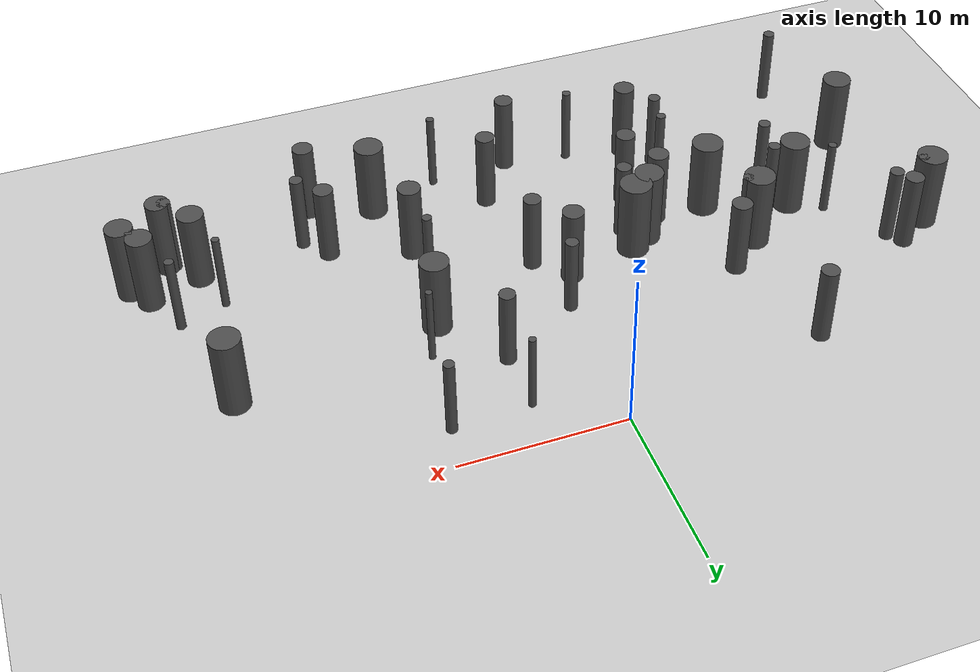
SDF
<sdf version="1.9">
 <world name="default">
  <model name="ground_plane">
   <static>true</static>
   <link name="link">
    <collision name="collision">
     <geometry><plane><normal>0 0 1</normal><size>1 1</size></plane></geometry>
    </collision>
    <visual name="visual">
     <geometry><plane><normal>0 0 1</normal><size>500 500</size></plane></geometry>
     <material>
      <ambient>0.8 0.8 0.8 1</ambient>
      <diffuse>0.8 0.8 0.8 1</diffuse>
      <specular>0.8 0.8 0.8 1</specular>
     </material>
    </visual>
    <inertial>
     <mass>1</mass>
     <inertia><ixx>1</ixx><ixy>0</ixy><ixz>0</ixz><iyy>1</iyy><iyz>0</iyz><izz>1</izz></inertia>
    </inertial>
   </link>
  </model>
  <model name="cylinder_0">
   <static>true</static>
   <pose>19.62 -19.38 2.50 0 0 0</pose>
   <link name="link">
    <collision name="collision">
     <geometry><cylinder><radius>0.80</radius><length>5.0</length></cylinder></geometry>
    </collision>
    <visual name="visual">
     <geometry><cylinder><radius>0.80</radius><length>5.0</length></cylinder></geometry>
     <material>
      <ambient>0.3 0.3 0.3 1</ambient>
      <diffuse>0.3 0.3 0.3 1</diffuse>
      <specular>0.1 0.1 0.1 1</specular>
     </material>
    </visual>
   </link>
  </model>
  <model name="cylinder_1">
   <static>true</static>
   <pose>-12.82 -11.24 2.50 0 0 0</pose>
   <link name="link">
    <collision name="collision">
     <geometry><cylinder><radius>0.94</radius><length>5.0</length></cylinder></geometry>
    </collision>
    <visual name="visual">
     <geometry><cylinder><radius>0.94</radius><length>5.0</length></cylinder></geometry>
     <material>
      <ambient>0.3 0.3 0.3 1</ambient>
      <diffuse>0.3 0.3 0.3 1</diffuse>
      <specular>0.1 0.1 0.1 1</specular>
     </material>
    </visual>
   </link>
  </model>
  <model name="cylinder_2">
   <static>true</static>
   <pose>4.63 -2.87 2.50 0 0 0</pose>
   <link name="link">
    <collision name="collision">
     <geometry><cylinder><radius>0.22</radius><length>5.0</length></cylinder></geometry>
    </collision>
    <visual name="visual">
     <geometry><cylinder><radius>0.22</radius><length>5.0</length></cylinder></geometry>
     <material>
      <ambient>0.3 0.3 0.3 1</ambient>
      <diffuse>0.3 0.3 0.3 1</diffuse>
      <specular>0.1 0.1 0.1 1</specular>
     </material>
    </visual>
   </link>
  </model>
  <model name="cylinder_5">
   <static>true</static>
   <pose>-23.44 -9.43 2.50 0 0 0</pose>
   <link name="link">
    <collision name="collision">
     <geometry><cylinder><radius>0.93</radius><length>5.0</length></cylinder></geometry>
    </collision>
    <visual name="visual">
     <geometry><cylinder><radius>0.93</radius><length>5.0</length></cylinder></geometry>
     <material>
      <ambient>0.3 0.3 0.3 1</ambient>
      <diffuse>0.3 0.3 0.3 1</diffuse>
      <specular>0.1 0.1 0.1 1</specular>
     </material>
    </visual>
   </link>
  </model>
  <model name="cylinder_6">
   <static>true</static>
   <pose>-1.21 -11.95 2.50 0 0 0</pose>
   <link name="link">
    <collision name="collision">
     <geometry><cylinder><radius>0.66</radius><length>5.0</length></cylinder></geometry>
    </collision>
    <visual name="visual">
     <geometry><cylinder><radius>0.66</radius><length>5.0</length></cylinder></geometry>
     <material>
      <ambient>0.3 0.3 0.3 1</ambient>
      <diffuse>0.3 0.3 0.3 1</diffuse>
      <specular>0.1 0.1 0.1 1</specular>
     </material>
    </visual>
   </link>
  </model>
  <model name="cylinder_12">
   <static>true</static>
   <pose>-21.37 -7.94 2.50 0 0 0</pose>
   <link name="link">
    <collision name="collision">
     <geometry><cylinder><radius>0.57</radius><length>5.0</length></cylinder></geometry>
    </collision>
    <visual name="visual">
     <geometry><cylinder><radius>0.57</radius><length>5.0</length></cylinder></geometry>
     <material>
      <ambient>0.3 0.3 0.3 1</ambient>
      <diffuse>0.3 0.3 0.3 1</diffuse>
      <specular>0.1 0.1 0.1 1</specular>
     </material>
    </visual>
   </link>
  </model>
  <model name="cylinder_13">
   <static>true</static>
   <pose>-22.87 -9.44 2.50 0 0 0</pose>
   <link name="link">
    <collision name="collision">
     <geometry><cylinder><radius>0.32</radius><length>5.0</length></cylinder></geometry>
    </collision>
    <visual name="visual">
     <geometry><cylinder><radius>0.32</radius><length>5.0</length></cylinder></geometry>
     <material>
      <ambient>0.3 0.3 0.3 1</ambient>
      <diffuse>0.3 0.3 0.3 1</diffuse>
      <specular>0.1 0.1 0.1 1</specular>
     </material>
    </visual>
   </link>
  </model>
  <model name="cylinder_18">
   <static>true</static>
   <pose>11.87 -18.88 2.50 0 0 0</pose>
   <link name="link">
    <collision name="collision">
     <geometry><cylinder><radius>0.60</radius><length>5.0</length></cylinder></geometry>
    </collision>
    <visual name="visual">
     <geometry><cylinder><radius>0.60</radius><length>5.0</length></cylinder></geometry>
     <material>
      <ambient>0.3 0.3 0.3 1</ambient>
      <diffuse>0.3 0.3 0.3 1</diffuse>
      <specular>0.1 0.1 0.1 1</specular>
     </material>
    </visual>
   </link>
  </model>
  <model name="cylinder_24">
   <static>true</static>
   <pose>-8.00 -15.27 2.50 0 0 0</pose>
   <link name="link">
    <collision name="collision">
     <geometry><cylinder><radius>0.64</radius><length>5.0</length></cylinder></geometry>
    </collision>
    <visual name="visual">
     <geometry><cylinder><radius>0.64</radius><length>5.0</length></cylinder></geometry>
     <material>
      <ambient>0.3 0.3 0.3 1</ambient>
      <diffuse>0.3 0.3 0.3 1</diffuse>
      <specular>0.1 0.1 0.1 1</specular>
     </material>
    </visual>
   </link>
  </model>
  <model name="cylinder_25">
   <static>true</static>
   <pose>-6.87 -17.71 2.50 0 0 0</pose>
   <link name="link">
    <collision name="collision">
     <geometry><cylinder><radius>0.59</radius><length>5.0</length></cylinder></geometry>
    </collision>
    <visual name="visual">
     <geometry><cylinder><radius>0.59</radius><length>5.0</length></cylinder></geometry>
     <material>
      <ambient>0.3 0.3 0.3 1</ambient>
      <diffuse>0.3 0.3 0.3 1</diffuse>
      <specular>0.1 0.1 0.1 1</specular>
     </material>
    </visual>
   </link>
  </model>
  <model name="cylinder_27">
   <static>true</static>
   <pose>12.03 -23.19 2.50 0 0 0</pose>
   <link name="link">
    <collision name="collision">
     <geometry><cylinder><radius>0.63</radius><length>5.0</length></cylinder></geometry>
    </collision>
    <visual name="visual">
     <geometry><cylinder><radius>0.63</radius><length>5.0</length></cylinder></geometry>
     <material>
      <ambient>0.3 0.3 0.3 1</ambient>
      <diffuse>0.3 0.3 0.3 1</diffuse>
      <specular>0.1 0.1 0.1 1</specular>
     </material>
    </visual>
   </link>
  </model>
  <model name="cylinder_28">
   <static>true</static>
   <pose>-18.26 -12.42 2.50 0 0 0</pose>
   <link name="link">
    <collision name="collision">
     <geometry><cylinder><radius>0.26</radius><length>5.0</length></cylinder></geometry>
    </collision>
    <visual name="visual">
     <geometry><cylinder><radius>0.26</radius><length>5.0</length></cylinder></geometry>
     <material>
      <ambient>0.3 0.3 0.3 1</ambient>
      <diffuse>0.3 0.3 0.3 1</diffuse>
      <specular>0.1 0.1 0.1 1</specular>
     </material>
    </visual>
   </link>
  </model>
  <model name="cylinder_30">
   <static>true</static>
   <pose>-5.02 -23.02 2.50 0 0 0</pose>
   <link name="link">
    <collision name="collision">
     <geometry><cylinder><radius>0.27</radius><length>5.0</length></cylinder></geometry>
    </collision>
    <visual name="visual">
     <geometry><cylinder><radius>0.27</radius><length>5.0</length></cylinder></geometry>
     <material>
      <ambient>0.3 0.3 0.3 1</ambient>
      <diffuse>0.3 0.3 0.3 1</diffuse>
      <specular>0.1 0.1 0.1 1</specular>
     </material>
    </visual>
   </link>
  </model>
  <model name="cylinder_32">
   <static>true</static>
   <pose>-11.24 -15.23 2.50 0 0 0</pose>
   <link name="link">
    <collision name="collision">
     <geometry><cylinder><radius>0.95</radius><length>5.0</length></cylinder></geometry>
    </collision>
    <visual name="visual">
     <geometry><cylinder><radius>0.95</radius><length>5.0</length></cylinder></geometry>
     <material>
      <ambient>0.3 0.3 0.3 1</ambient>
      <diffuse>0.3 0.3 0.3 1</diffuse>
      <specular>0.1 0.1 0.1 1</specular>
     </material>
    </visual>
   </link>
  </model>
  <model name="cylinder_34">
   <static>true</static>
   <pose>21.51 -15.66 2.50 0 0 0</pose>
   <link name="link">
    <collision name="collision">
     <geometry><cylinder><radius>0.28</radius><length>5.0</length></cylinder></geometry>
    </collision>
    <visual name="visual">
     <geometry><cylinder><radius>0.28</radius><length>5.0</length></cylinder></geometry>
     <material>
      <ambient>0.3 0.3 0.3 1</ambient>
      <diffuse>0.3 0.3 0.3 1</diffuse>
      <specular>0.1 0.1 0.1 1</specular>
     </material>
    </visual>
   </link>
  </model>
  <model name="cylinder_35">
   <static>true</static>
   <pose>-0.17 -9.47 2.50 0 0 0</pose>
   <link name="link">
    <collision name="collision">
     <geometry><cylinder><radius>0.39</radius><length>5.0</length></cylinder></geometry>
    </collision>
    <visual name="visual">
     <geometry><cylinder><radius>0.39</radius><length>5.0</length></cylinder></geometry>
     <material>
      <ambient>0.3 0.3 0.3 1</ambient>
      <diffuse>0.3 0.3 0.3 1</diffuse>
      <specular>0.1 0.1 0.1 1</specular>
     </material>
    </visual>
   </link>
  </model>
  <model name="cylinder_36">
   <static>true</static>
   <pose>-15.35 -15.80 2.50 0 0 0</pose>
   <link name="link">
    <collision name="collision">
     <geometry><cylinder><radius>0.37</radius><length>5.0</length></cylinder></geometry>
    </collision>
    <visual name="visual">
     <geometry><cylinder><radius>0.37</radius><length>5.0</length></cylinder></geometry>
     <material>
      <ambient>0.3 0.3 0.3 1</ambient>
      <diffuse>0.3 0.3 0.3 1</diffuse>
      <specular>0.1 0.1 0.1 1</specular>
     </material>
    </visual>
   </link>
  </model>
  <model name="cylinder_38">
   <static>true</static>
   <pose>4.71 -6.65 2.50 0 0 0</pose>
   <link name="link">
    <collision name="collision">
     <geometry><cylinder><radius>0.48</radius><length>5.0</length></cylinder></geometry>
    </collision>
    <visual name="visual">
     <geometry><cylinder><radius>0.48</radius><length>5.0</length></cylinder></geometry>
     <material>
      <ambient>0.3 0.3 0.3 1</ambient>
      <diffuse>0.3 0.3 0.3 1</diffuse>
      <specular>0.1 0.1 0.1 1</specular>
     </material>
    </visual>
   </link>
  </model>
  <model name="cylinder_43">
   <static>true</static>
   <pose>0.63 -13.84 2.50 0 0 0</pose>
   <link name="link">
    <collision name="collision">
     <geometry><cylinder><radius>0.54</radius><length>5.0</length></cylinder></geometry>
    </collision>
    <visual name="visual">
     <geometry><cylinder><radius>0.54</radius><length>5.0</length></cylinder></geometry>
     <material>
      <ambient>0.3 0.3 0.3 1</ambient>
      <diffuse>0.3 0.3 0.3 1</diffuse>
      <specular>0.1 0.1 0.1 1</specular>
     </material>
    </visual>
   </link>
  </model>
  <model name="cylinder_44">
   <static>true</static>
   <pose>6.89 -14.36 2.50 0 0 0</pose>
   <link name="link">
    <collision name="collision">
     <geometry><cylinder><radius>0.29</radius><length>5.0</length></cylinder></geometry>
    </collision>
    <visual name="visual">
     <geometry><cylinder><radius>0.29</radius><length>5.0</length></cylinder></geometry>
     <material>
      <ambient>0.3 0.3 0.3 1</ambient>
      <diffuse>0.3 0.3 0.3 1</diffuse>
      <specular>0.1 0.1 0.1 1</specular>
     </material>
    </visual>
   </link>
  </model>
  <model name="cylinder_45">
   <static>true</static>
   <pose>-1.02 -23.64 2.50 0 0 0</pose>
   <link name="link">
    <collision name="collision">
     <geometry><cylinder><radius>0.57</radius><length>5.0</length></cylinder></geometry>
    </collision>
    <visual name="visual">
     <geometry><cylinder><radius>0.57</radius><length>5.0</length></cylinder></geometry>
     <material>
      <ambient>0.3 0.3 0.3 1</ambient>
      <diffuse>0.3 0.3 0.3 1</diffuse>
      <specular>0.1 0.1 0.1 1</specular>
     </material>
    </visual>
   </link>
  </model>
  <model name="cylinder_48">
   <static>true</static>
   <pose>-12.75 -2.30 2.50 0 0 0</pose>
   <link name="link">
    <collision name="collision">
     <geometry><cylinder><radius>0.54</radius><length>5.0</length></cylinder></geometry>
    </collision>
    <visual name="visual">
     <geometry><cylinder><radius>0.54</radius><length>5.0</length></cylinder></geometry>
     <material>
      <ambient>0.3 0.3 0.3 1</ambient>
      <diffuse>0.3 0.3 0.3 1</diffuse>
      <specular>0.1 0.1 0.1 1</specular>
     </material>
    </visual>
   </link>
  </model>
  <model name="cylinder_50">
   <static>true</static>
   <pose>-6.76 -13.78 2.50 0 0 0</pose>
   <link name="link">
    <collision name="collision">
     <geometry><cylinder><radius>0.88</radius><length>5.0</length></cylinder></geometry>
    </collision>
    <visual name="visual">
     <geometry><cylinder><radius>0.88</radius><length>5.0</length></cylinder></geometry>
     <material>
      <ambient>0.3 0.3 0.3 1</ambient>
      <diffuse>0.3 0.3 0.3 1</diffuse>
      <specular>0.1 0.1 0.1 1</specular>
     </material>
    </visual>
   </link>
  </model>
  <model name="cylinder_51">
   <static>true</static>
   <pose>19.90 -8.57 2.50 0 0 0</pose>
   <link name="link">
    <collision name="collision">
     <geometry><cylinder><radius>0.92</radius><length>5.0</length></cylinder></geometry>
    </collision>
    <visual name="visual">
     <geometry><cylinder><radius>0.92</radius><length>5.0</length></cylinder></geometry>
     <material>
      <ambient>0.3 0.3 0.3 1</ambient>
      <diffuse>0.3 0.3 0.3 1</diffuse>
      <specular>0.1 0.1 0.1 1</specular>
     </material>
    </visual>
   </link>
  </model>
  <model name="cylinder_53">
   <static>true</static>
   <pose>9.34 -2.64 2.50 0 0 0</pose>
   <link name="link">
    <collision name="collision">
     <geometry><cylinder><radius>0.32</radius><length>5.0</length></cylinder></geometry>
    </collision>
    <visual name="visual">
     <geometry><cylinder><radius>0.32</radius><length>5.0</length></cylinder></geometry>
     <material>
      <ambient>0.3 0.3 0.3 1</ambient>
      <diffuse>0.3 0.3 0.3 1</diffuse>
      <specular>0.1 0.1 0.1 1</specular>
     </material>
    </visual>
   </link>
  </model>
  <model name="cylinder_54">
   <static>true</static>
   <pose>-5.61 -13.07 2.50 0 0 0</pose>
   <link name="link">
    <collision name="collision">
     <geometry><cylinder><radius>0.98</radius><length>5.0</length></cylinder></geometry>
    </collision>
    <visual name="visual">
     <geometry><cylinder><radius>0.98</radius><length>5.0</length></cylinder></geometry>
     <material>
      <ambient>0.3 0.3 0.3 1</ambient>
      <diffuse>0.3 0.3 0.3 1</diffuse>
      <specular>0.1 0.1 0.1 1</specular>
     </material>
    </visual>
   </link>
  </model>
  <model name="cylinder_55">
   <static>true</static>
   <pose>21.24 -21.02 2.50 0 0 0</pose>
   <link name="link">
    <collision name="collision">
     <geometry><cylinder><radius>0.71</radius><length>5.0</length></cylinder></geometry>
    </collision>
    <visual name="visual">
     <geometry><cylinder><radius>0.71</radius><length>5.0</length></cylinder></geometry>
     <material>
      <ambient>0.3 0.3 0.3 1</ambient>
      <diffuse>0.3 0.3 0.3 1</diffuse>
      <specular>0.1 0.1 0.1 1</specular>
     </material>
    </visual>
   </link>
  </model>
  <model name="cylinder_57">
   <static>true</static>
   <pose>7.65 -10.58 2.50 0 0 0</pose>
   <link name="link">
    <collision name="collision">
     <geometry><cylinder><radius>0.87</radius><length>5.0</length></cylinder></geometry>
    </collision>
    <visual name="visual">
     <geometry><cylinder><radius>0.87</radius><length>5.0</length></cylinder></geometry>
     <material>
      <ambient>0.3 0.3 0.3 1</ambient>
      <diffuse>0.3 0.3 0.3 1</diffuse>
      <specular>0.1 0.1 0.1 1</specular>
     </material>
    </visual>
   </link>
  </model>
  <model name="cylinder_58">
   <static>true</static>
   <pose>-14.91 -13.55 2.50 0 0 0</pose>
   <link name="link">
    <collision name="collision">
     <geometry><cylinder><radius>0.37</radius><length>5.0</length></cylinder></geometry>
    </collision>
    <visual name="visual">
     <geometry><cylinder><radius>0.37</radius><length>5.0</length></cylinder></geometry>
     <material>
      <ambient>0.3 0.3 0.3 1</ambient>
      <diffuse>0.3 0.3 0.3 1</diffuse>
      <specular>0.1 0.1 0.1 1</specular>
     </material>
    </visual>
   </link>
  </model>
  <model name="cylinder_59">
   <static>true</static>
   <pose>-20.04 -24.66 2.50 0 0 0</pose>
   <link name="link">
    <collision name="collision">
     <geometry><cylinder><radius>0.35</radius><length>5.0</length></cylinder></geometry>
    </collision>
    <visual name="visual">
     <geometry><cylinder><radius>0.35</radius><length>5.0</length></cylinder></geometry>
     <material>
      <ambient>0.3 0.3 0.3 1</ambient>
      <diffuse>0.3 0.3 0.3 1</diffuse>
      <specular>0.1 0.1 0.1 1</specular>
     </material>
    </visual>
   </link>
  </model>
  <model name="cylinder_60">
   <static>true</static>
   <pose>-10.71 -9.25 2.50 0 0 0</pose>
   <link name="link">
    <collision name="collision">
     <geometry><cylinder><radius>0.62</radius><length>5.0</length></cylinder></geometry>
    </collision>
    <visual name="visual">
     <geometry><cylinder><radius>0.62</radius><length>5.0</length></cylinder></geometry>
     <material>
      <ambient>0.3 0.3 0.3 1</ambient>
      <diffuse>0.3 0.3 0.3 1</diffuse>
      <specular>0.1 0.1 0.1 1</specular>
     </material>
    </visual>
   </link>
  </model>
  <model name="cylinder_63">
   <static>true</static>
   <pose>-5.55 -14.79 2.50 0 0 0</pose>
   <link name="link">
    <collision name="collision">
     <geometry><cylinder><radius>0.46</radius><length>5.0</length></cylinder></geometry>
    </collision>
    <visual name="visual">
     <geometry><cylinder><radius>0.46</radius><length>5.0</length></cylinder></geometry>
     <material>
      <ambient>0.3 0.3 0.3 1</ambient>
      <diffuse>0.3 0.3 0.3 1</diffuse>
      <specular>0.1 0.1 0.1 1</specular>
     </material>
    </visual>
   </link>
  </model>
  <model name="cylinder_64">
   <static>true</static>
   <pose>7.08 -17.31 2.50 0 0 0</pose>
   <link name="link">
    <collision name="collision">
     <geometry><cylinder><radius>0.70</radius><length>5.0</length></cylinder></geometry>
    </collision>
    <visual name="visual">
     <geometry><cylinder><radius>0.70</radius><length>5.0</length></cylinder></geometry>
     <material>
      <ambient>0.3 0.3 0.3 1</ambient>
      <diffuse>0.3 0.3 0.3 1</diffuse>
      <specular>0.1 0.1 0.1 1</specular>
     </material>
    </visual>
   </link>
  </model>
  <model name="cylinder_68">
   <static>true</static>
   <pose>-20.65 -8.78 2.50 0 0 0</pose>
   <link name="link">
    <collision name="collision">
     <geometry><cylinder><radius>0.43</radius><length>5.0</length></cylinder></geometry>
    </collision>
    <visual name="visual">
     <geometry><cylinder><radius>0.43</radius><length>5.0</length></cylinder></geometry>
     <material>
      <ambient>0.3 0.3 0.3 1</ambient>
      <diffuse>0.3 0.3 0.3 1</diffuse>
      <specular>0.1 0.1 0.1 1</specular>
     </material>
    </visual>
   </link>
  </model>
  <model name="cylinder_69">
   <static>true</static>
   <pose>13.13 -20.33 2.50 0 0 0</pose>
   <link name="link">
    <collision name="collision">
     <geometry><cylinder><radius>0.40</radius><length>5.0</length></cylinder></geometry>
    </collision>
    <visual name="visual">
     <geometry><cylinder><radius>0.40</radius><length>5.0</length></cylinder></geometry>
     <material>
      <ambient>0.3 0.3 0.3 1</ambient>
      <diffuse>0.3 0.3 0.3 1</diffuse>
      <specular>0.1 0.1 0.1 1</specular>
     </material>
    </visual>
   </link>
  </model>
  <model name="cylinder_70">
   <static>true</static>
   <pose>1.30 -20.45 2.50 0 0 0</pose>
   <link name="link">
    <collision name="collision">
     <geometry><cylinder><radius>0.58</radius><length>5.0</length></cylinder></geometry>
    </collision>
    <visual name="visual">
     <geometry><cylinder><radius>0.58</radius><length>5.0</length></cylinder></geometry>
     <material>
      <ambient>0.3 0.3 0.3 1</ambient>
      <diffuse>0.3 0.3 0.3 1</diffuse>
      <specular>0.1 0.1 0.1 1</specular>
     </material>
    </visual>
   </link>
  </model>
  <model name="cylinder_71">
   <static>true</static>
   <pose>-21.79 -18.47 2.50 0 0 0</pose>
   <link name="link">
    <collision name="collision">
     <geometry><cylinder><radius>0.88</radius><length>5.0</length></cylinder></geometry>
    </collision>
    <visual name="visual">
     <geometry><cylinder><radius>0.88</radius><length>5.0</length></cylinder></geometry>
     <material>
      <ambient>0.3 0.3 0.3 1</ambient>
      <diffuse>0.3 0.3 0.3 1</diffuse>
      <specular>0.1 0.1 0.1 1</specular>
     </material>
    </visual>
   </link>
  </model>
  <model name="cylinder_72">
   <static>true</static>
   <pose>-8.67 -22.31 2.50 0 0 0</pose>
   <link name="link">
    <collision name="collision">
     <geometry><cylinder><radius>0.65</radius><length>5.0</length></cylinder></geometry>
    </collision>
    <visual name="visual">
     <geometry><cylinder><radius>0.65</radius><length>5.0</length></cylinder></geometry>
     <material>
      <ambient>0.3 0.3 0.3 1</ambient>
      <diffuse>0.3 0.3 0.3 1</diffuse>
      <specular>0.1 0.1 0.1 1</specular>
     </material>
    </visual>
   </link>
  </model>
  <model name="cylinder_73">
   <static>true</static>
   <pose>23.22 -18.89 2.50 0 0 0</pose>
   <link name="link">
    <collision name="collision">
     <geometry><cylinder><radius>0.21</radius><length>5.0</length></cylinder></geometry>
    </collision>
    <visual name="visual">
     <geometry><cylinder><radius>0.21</radius><length>5.0</length></cylinder></geometry>
     <material>
      <ambient>0.3 0.3 0.3 1</ambient>
      <diffuse>0.3 0.3 0.3 1</diffuse>
      <specular>0.1 0.1 0.1 1</specular>
     </material>
    </visual>
   </link>
  </model>
  <model name="cylinder_74">
   <static>true</static>
   <pose>-16.31 -13.55 2.50 0 0 0</pose>
   <link name="link">
    <collision name="collision">
     <geometry><cylinder><radius>0.90</radius><length>5.0</length></cylinder></geometry>
    </collision>
    <visual name="visual">
     <geometry><cylinder><radius>0.90</radius><length>5.0</length></cylinder></geometry>
     <material>
      <ambient>0.3 0.3 0.3 1</ambient>
      <diffuse>0.3 0.3 0.3 1</diffuse>
      <specular>0.1 0.1 0.1 1</specular>
     </material>
    </visual>
   </link>
  </model>
  <model name="cylinder_75">
   <static>true</static>
   <pose>-12.11 -11.32 2.50 0 0 0</pose>
   <link name="link">
    <collision name="collision">
     <geometry><cylinder><radius>0.33</radius><length>5.0</length></cylinder></geometry>
    </collision>
    <visual name="visual">
     <geometry><cylinder><radius>0.33</radius><length>5.0</length></cylinder></geometry>
     <material>
      <ambient>0.3 0.3 0.3 1</ambient>
      <diffuse>0.3 0.3 0.3 1</diffuse>
      <specular>0.1 0.1 0.1 1</specular>
     </material>
    </visual>
   </link>
  </model>
  <model name="cylinder_76">
   <static>true</static>
   <pose>8.67 -8.27 2.50 0 0 0</pose>
   <link name="link">
    <collision name="collision">
     <geometry><cylinder><radius>0.20</radius><length>5.0</length></cylinder></geometry>
    </collision>
    <visual name="visual">
     <geometry><cylinder><radius>0.20</radius><length>5.0</length></cylinder></geometry>
     <material>
      <ambient>0.3 0.3 0.3 1</ambient>
      <diffuse>0.3 0.3 0.3 1</diffuse>
      <specular>0.1 0.1 0.1 1</specular>
     </material>
    </visual>
   </link>
  </model>
  <model name="cylinder_78">
   <static>true</static>
   <pose>18.70 -16.65 2.50 0 0 0</pose>
   <link name="link">
    <collision name="collision">
     <geometry><cylinder><radius>0.23</radius><length>5.0</length></cylinder></geometry>
    </collision>
    <visual name="visual">
     <geometry><cylinder><radius>0.23</radius><length>5.0</length></cylinder></geometry>
     <material>
      <ambient>0.3 0.3 0.3 1</ambient>
      <diffuse>0.3 0.3 0.3 1</diffuse>
      <specular>0.1 0.1 0.1 1</specular>
     </material>
    </visual>
   </link>
  </model>
  <model name="cylinder_85">
   <static>true</static>
   <pose>-9.67 -18.75 2.50 0 0 0</pose>
   <link name="link">
    <collision name="collision">
     <geometry><cylinder><radius>0.29</radius><length>5.0</length></cylinder></geometry>
    </collision>
    <visual name="visual">
     <geometry><cylinder><radius>0.29</radius><length>5.0</length></cylinder></geometry>
     <material>
      <ambient>0.3 0.3 0.3 1</ambient>
      <diffuse>0.3 0.3 0.3 1</diffuse>
      <specular>0.1 0.1 0.1 1</specular>
     </material>
    </visual>
   </link>
  </model>
  <model name="cylinder_87">
   <static>true</static>
   <pose>22.76 -18.28 2.50 0 0 0</pose>
   <link name="link">
    <collision name="collision">
     <geometry><cylinder><radius>0.79</radius><length>5.0</length></cylinder></geometry>
    </collision>
    <visual name="visual">
     <geometry><cylinder><radius>0.79</radius><length>5.0</length></cylinder></geometry>
     <material>
      <ambient>0.3 0.3 0.3 1</ambient>
      <diffuse>0.3 0.3 0.3 1</diffuse>
      <specular>0.1 0.1 0.1 1</specular>
     </material>
    </visual>
   </link>
  </model>
  <model name="cylinder_88">
   <static>true</static>
   <pose>20.87 -20.94 2.50 0 0 0</pose>
   <link name="link">
    <collision name="collision">
     <geometry><cylinder><radius>0.41</radius><length>5.0</length></cylinder></geometry>
    </collision>
    <visual name="visual">
     <geometry><cylinder><radius>0.41</radius><length>5.0</length></cylinder></geometry>
     <material>
      <ambient>0.3 0.3 0.3 1</ambient>
      <diffuse>0.3 0.3 0.3 1</diffuse>
      <specular>0.1 0.1 0.1 1</specular>
     </material>
    </visual>
   </link>
  </model>
  <model name="cylinder_89">
   <static>true</static>
   <pose>23.69 -19.54 2.50 0 0 0</pose>
   <link name="link">
    <collision name="collision">
     <geometry><cylinder><radius>0.82</radius><length>5.0</length></cylinder></geometry>
    </collision>
    <visual name="visual">
     <geometry><cylinder><radius>0.82</radius><length>5.0</length></cylinder></geometry>
     <material>
      <ambient>0.3 0.3 0.3 1</ambient>
      <diffuse>0.3 0.3 0.3 1</diffuse>
      <specular>0.1 0.1 0.1 1</specular>
     </material>
    </visual>
   </link>
  </model>
  <model name="cylinder_93">
   <static>true</static>
   <pose>-10.04 -20.65 2.50 0 0 0</pose>
   <link name="link">
    <collision name="collision">
     <geometry><cylinder><radius>0.37</radius><length>5.0</length></cylinder></geometry>
    </collision>
    <visual name="visual">
     <geometry><cylinder><radius>0.37</radius><length>5.0</length></cylinder></geometry>
     <material>
      <ambient>0.3 0.3 0.3 1</ambient>
      <diffuse>0.3 0.3 0.3 1</diffuse>
      <specular>0.1 0.1 0.1 1</specular>
     </material>
    </visual>
   </link>
  </model>
  <model name="cylinder_94">
   <static>true</static>
   <pose>8.24 -21.99 2.50 0 0 0</pose>
   <link name="link">
    <collision name="collision">
     <geometry><cylinder><radius>0.89</radius><length>5.0</length></cylinder></geometry>
    </collision>
    <visual name="visual">
     <geometry><cylinder><radius>0.89</radius><length>5.0</length></cylinder></geometry>
     <material>
      <ambient>0.3 0.3 0.3 1</ambient>
      <diffuse>0.3 0.3 0.3 1</diffuse>
      <specular>0.1 0.1 0.1 1</specular>
     </material>
    </visual>
   </link>
  </model>
  <model name="cylinder_95">
   <static>true</static>
   <pose>3.90 -23.35 2.50 0 0 0</pose>
   <link name="link">
    <collision name="collision">
     <geometry><cylinder><radius>0.24</radius><length>5.0</length></cylinder></geometry>
    </collision>
    <visual name="visual">
     <geometry><cylinder><radius>0.24</radius><length>5.0</length></cylinder></geometry>
     <material>
      <ambient>0.3 0.3 0.3 1</ambient>
      <diffuse>0.3 0.3 0.3 1</diffuse>
      <specular>0.1 0.1 0.1 1</specular>
     </material>
    </visual>
   </link>
  </model>
 </world>
</sdf>
